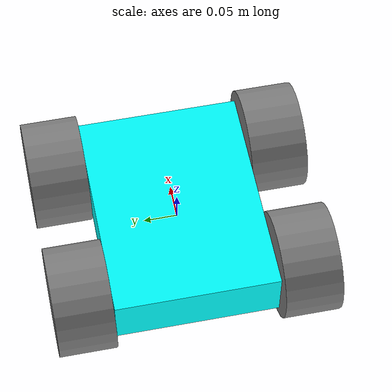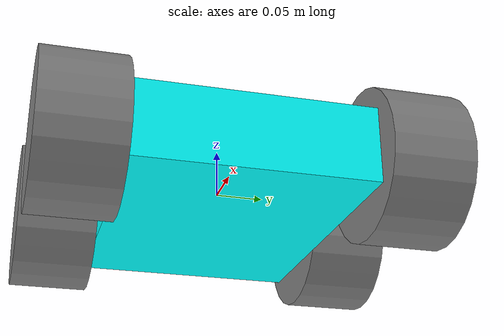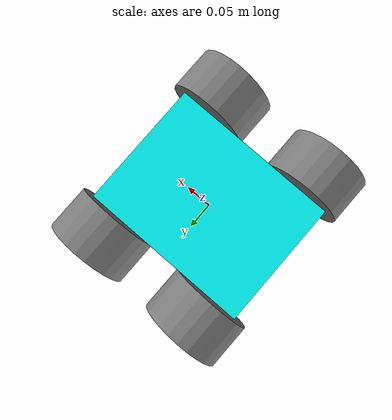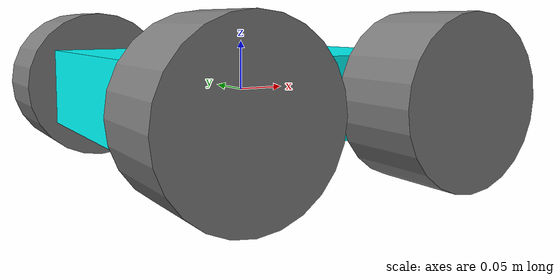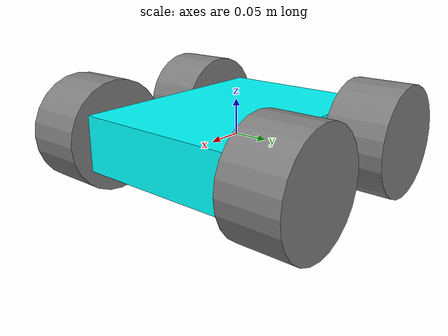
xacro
<?xml version="1.0"?>
<robot xmlns:xacro="http://ros.org/wiki/xacro">
  <xacro:include filename="inertial_macros.xacro"/>

<!-- Define robot constants -->
  <xacro:property name="base_width" value="0.241"/>
  <xacro:property name="base_length" value="0.32"/>
  <xacro:property name="base_height" value="0.0785"/>

  <xacro:property name="wheel_radius" value="0.079"/>
  <xacro:property name="wheel_width" value="0.084"/>
  <xacro:property name="wheel_ygap" value="0.0437"/>
  <xacro:property name="wheel_zoff" value="0"/>
  <xacro:property name="wheel_front_xoff" value="0.11"/>
  <xacro:property name="wheel_rear_xoff" value="-0.11"/>

<!-- Robot Base -->
  <link name="base_link">

  </link>

<!-- Robot Chassis-->
 <joint name="chassis_joint" type="fixed">
    <parent link="base_link"/>
    <child link="chassis"/>
    <origin xyz="0 0 0"/>
  </joint>

  <link name="chassis">
    <visual>
      <geometry>
        <box size="${base_length} ${base_width} ${base_height}"/>
      </geometry>
      <material name="Cyan">
        <color rgba="0 1 1 1"/>
      </material>
    </visual>
    <collision>
      <geometry>
        <box size="${base_length} ${base_width} ${base_height}"/>
      </geometry>
    </collision>
    <xacro:inertial_box mass="3" x="${base_length}" y=" ${base_width}" z=" ${base_height}">
      <origin xyz= "0 0 0" rpy="0 0 0"/>
    </xacro:inertial_box>
  </link>

  <gazebo reference="chassis">
    <material>Gazebo/Blue</material>
  </gazebo>

<!-- Robot Footprint -->
  <link name="base_footprint"/>

  <joint name="base_joint" type="fixed">
    <parent link="base_link"/>
    <child link="base_footprint"/>
    <origin xyz="0.0 0.0 ${-(wheel_radius+wheel_zoff)}" rpy="0 0 0"/>
  </joint>

 <!-- Wheels -->
  <xacro:macro name="wheel" params="prefix x_reflect y_reflect">

    <joint name="${prefix}_joint" type="continuous">
      <parent link="base_link"/>
      <child link="${prefix}"/>
      <origin xyz="${x_reflect*wheel_front_xoff} ${y_reflect*(base_width/2+wheel_ygap)} ${-wheel_zoff}" rpy="0 0 0"/>
      <axis xyz="0 1 0"/>
    </joint>

    <link name="${prefix}">
      <visual>
        <origin xyz="0 0 0" rpy="${pi/2} 0 0"/>
        <geometry>
          <cylinder radius="${wheel_radius}" length="${wheel_width}"/>
        </geometry>
        <material name="Gray">
          <color rgba="0.5 0.5 0.5 1.0"/>
        </material>
      </visual>
      <collision>
        <origin xyz="0 0 0" rpy="${pi/2} 0 0"/>
        <geometry>
          <cylinder radius="${wheel_radius}" length="${wheel_width}"/>
        </geometry>
      </collision>
      <xacro:inertial_cylinder mass="0.5" radius="${wheel_radius}" length="${wheel_width}">
        <origin xyz="0 0 0.1" rpy="0 0 0"/>
      </xacro:inertial_cylinder>
    </link>

    <gazebo reference="${prefix}">
      <material>Gazebo/Gray</material>
    </gazebo>

  </xacro:macro>

  <xacro:wheel prefix="drivewhl_l_r" x_reflect="-1" y_reflect="1" />
  <xacro:wheel prefix="drivewhl_r_r" x_reflect="-1" y_reflect="-1" />
  <xacro:wheel prefix="drivewhl_l_f" x_reflect="1" y_reflect="1" />
  <xacro:wheel prefix="drivewhl_r_f" x_reflect="1" y_reflect="-1" />

</robot>

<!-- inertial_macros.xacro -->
<robot xmlns:xacro="http://www.ros.org/wiki/xacro" >

 <!-- Specify some standard inertial calculations https://en.wikipedia.org/wiki/List_of_moments_of_inertia -->
<!-- These make use of xacro's mathematical functionality -->

    <xacro:macro name="inertial_box" params="mass x y z *origin">
        <inertial>
            <xacro:insert_block name="origin"/>
            <mass value="${mass}" />
            <inertia ixx="${(1/12) * mass * (y*y+z*z)}" ixy="0.0" ixz="0.0"
                    iyy="${(1/12) * mass * (x*x+z*z)}" iyz="0.0"
                    izz="${(1/12) * mass * (x*x+y*y)}" />
        </inertial>
    </xacro:macro>

    <xacro:macro name="inertial_cylinder" params="mass length radius *origin">
        <inertial>
            <xacro:insert_block name="origin"/>
            <mass value="${mass}" />
            <inertia ixx="${(1/12) * mass * (3*radius*radius + length*length)}" ixy="0.0" ixz="0.0"
                    iyy="${(1/12) * mass * (3*radius*radius + length*length)}" iyz="0.0"
                    izz="${(1/2) * mass * (radius*radius)}" />
        </inertial>
    </xacro:macro>

</robot>
